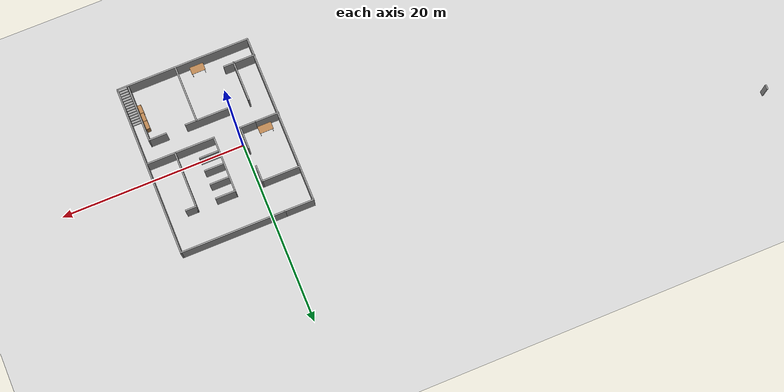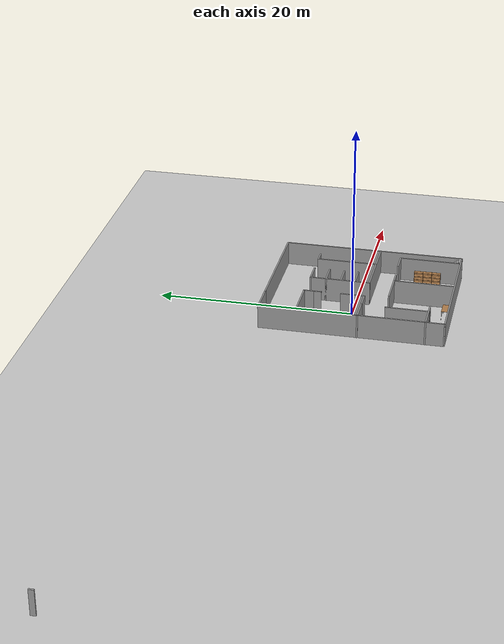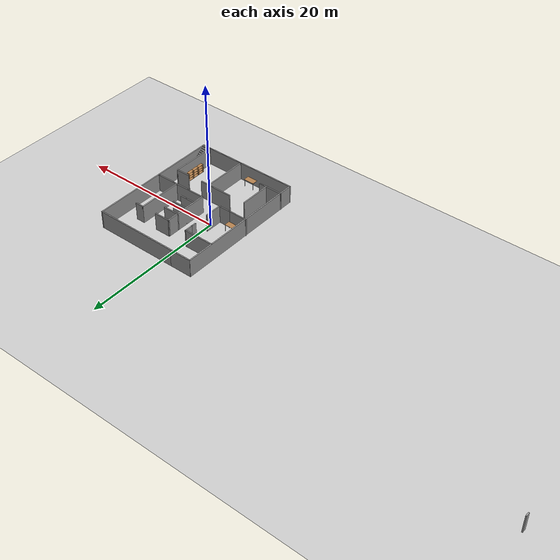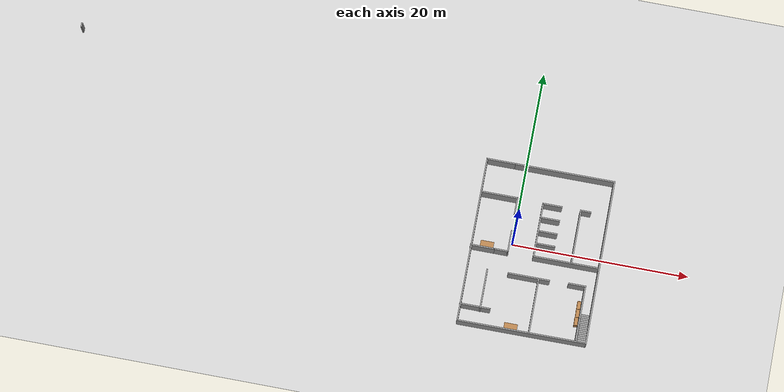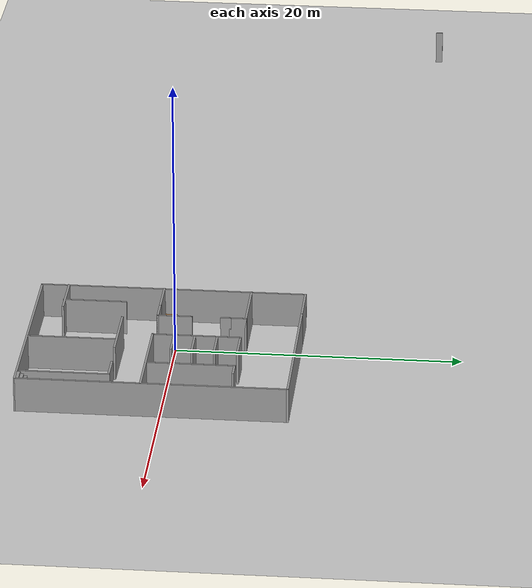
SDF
<sdf version="1.7">
 <world name="default">
  <scene><ambient>0.4 0.4 0.4 1</ambient><background>0.7 0.7 0.7 1</background><shadows>1</shadows></scene>
  <light name="sun" type="directional">
   <pose>0 0 10 0 -0 0</pose>
   <diffuse>0.8 0.8 0.8 1</diffuse>
   <specular>0.2 0.2 0.2 1</specular>
   <attenuation>
    <range>1000</range>
    <constant>0.9</constant>
    <linear>0.01</linear>
    <quadratic>0.001</quadratic>
   </attenuation>
   <direction>-0.5 0.1 -0.9</direction>
   <spot><inner_angle>0</inner_angle><outer_angle>0</outer_angle><falloff>0</falloff></spot>
  </light>
  <model name="ground_plane">
   <static>1</static>
   <link name="link">
    <collision name="collision">
     <geometry><plane><normal>0 0 1</normal><size>100 100</size></plane></geometry>
     <surface><friction><ode><mu>100</mu><mu2>50</mu2></ode></friction></surface>
    </collision>
    <visual name="visual">
     <cast_shadows>0</cast_shadows>
     <geometry><plane><normal>0 0 1</normal><size>100 100</size></plane></geometry>
     <material>
      <script><uri>file://media/materials/scripts/gazebo.material</uri><name>Gazebo/Grey</name></script>
     </material>
    </visual>
   </link>
  </model>
  <physics type="ode">
   <real_time_update_rate>0</real_time_update_rate>
   <max_step_size>0.001</max_step_size>
   <real_time_factor>1</real_time_factor>
   <ode>
    <solver>
     <type>quick</type>
     <iters>150</iters>
     <precon_iters>0</precon_iters>
     <sor>1.4</sor>
     <use_dynamic_moi_rescaling>1</use_dynamic_moi_rescaling>
    </solver>
    <constraints>
     <cfm>1e-05</cfm>
     <erp>0.2</erp>
     <contact_max_correcting_vel>2000</contact_max_correcting_vel>
     <contact_surface_layer>0.01</contact_surface_layer>
    </constraints>
   </ode>
  </physics>
  <gravity>0 0 -9.8</gravity>
  <magnetic_field>6e-06 2.3e-05 -4.2e-05</magnetic_field>
  <atmosphere type="adiabatic"/>
  <spherical_coordinates>
   <surface_model>EARTH_WGS84</surface_model>
   <latitude_deg>0</latitude_deg>
   <longitude_deg>0</longitude_deg>
   <elevation>0</elevation>
   <heading_deg>0</heading_deg>
  </spherical_coordinates>
  <model name="Base_square">
   <pose>-21.2675 2.85477 0 0 -0 0</pose>
   <link name="Wall_17">
    <collision name="Wall_17_Collision">
     <geometry><box><size>18.75 0.15 2.5</size></box></geometry>
     <pose>0 0 1.25 0 -0 0</pose>
    </collision>
    <visual name="Wall_17_Visual">
     <pose>0 0 1.25 0 -0 0</pose>
     <geometry><box><size>18.75 0.15 2.5</size></box></geometry>
     <material>
      <script><uri>file://media/materials/scripts/gazebo.material</uri><name>Gazebo/Grey</name></script>
      <ambient>1 1 1 1</ambient>
     </material>
     <meta><layer>0</layer></meta>
    </visual>
    <pose>16.7268 -3.44544 0 0 -0 -1.5708</pose>
   </link>
   <link name="Wall_18">
    <collision name="Wall_18_Collision">
     <geometry><box><size>14.6395 0.15 2.5</size></box></geometry>
     <pose>0 0 1.25 0 -0 0</pose>
    </collision>
    <visual name="Wall_18_Visual">
     <pose>0 0 1.25 0 -0 0</pose>
     <geometry><box><size>14.6395 0.15 2.5</size></box></geometry>
     <material>
      <script><uri>file://media/materials/scripts/gazebo.material</uri><name>Gazebo/Grey</name></script>
      <ambient>1 1 1 1</ambient>
     </material>
     <meta><layer>0</layer></meta>
    </visual>
    <pose>23.9714 -12.7722 0 0 -0 0.003693</pose>
   </link>
   <link name="Wall_19">
    <collision name="Wall_19_Collision">
     <geometry><box><size>18.75 0.15 2.5</size></box></geometry>
     <pose>0 0 1.25 0 -0 0</pose>
    </collision>
    <visual name="Wall_19_Visual">
     <pose>0 0 1.25 0 -0 0</pose>
     <geometry><box><size>18.75 0.15 2.5</size></box></geometry>
     <material>
      <script><uri>file://media/materials/scripts/gazebo.material</uri><name>Gazebo/Grey</name></script>
      <ambient>1 1 1 1</ambient>
     </material>
     <meta><layer>0</layer></meta>
    </visual>
    <pose>31.216 -3.44544 0 0 -0 1.5708</pose>
   </link>
   <link name="Wall_20">
    <collision name="Wall_20_Collision">
     <geometry><box><size>11.5 0.15 2.5</size></box></geometry>
     <pose>0 0 1.25 0 -0 0</pose>
    </collision>
    <visual name="Wall_20_Visual">
     <pose>0 0 1.25 0 -0 0</pose>
     <geometry><box><size>11.5 0.15 2.5</size></box></geometry>
     <material>
      <script><uri>file://media/materials/scripts/gazebo.material</uri><name>Gazebo/Grey</name></script>
      <ambient>1 1 1 1</ambient>
     </material>
     <meta><layer>0</layer></meta>
    </visual>
    <pose>25.541 5.85456 0 0 -0 3.14159</pose>
   </link>
   <link name="Wall_32">
    <collision name="Wall_32_Collision">
     <geometry><box><size>3.25 0.15 2.5</size></box></geometry>
     <pose>0 0 1.25 0 -0 0</pose>
    </collision>
    <visual name="Wall_32_Visual">
     <pose>0 0 1.25 0 -0 0</pose>
     <geometry><box><size>3.25 0.15 2.5</size></box></geometry>
     <material>
      <script><uri>file://media/materials/scripts/gazebo.material</uri><name>Gazebo/Grey</name></script>
      <ambient>1 1 1 1</ambient>
     </material>
     <meta><layer>0</layer></meta>
    </visual>
    <pose>18.316 5.85456 0 0 -0 3.14159</pose>
   </link>
   <link name="Wall_8">
    <collision name="Wall_8_Collision">
     <geometry><box><size>0.5 0.15 2.5</size></box></geometry>
     <pose>0 0 1.25 0 -0 0</pose>
    </collision>
    <visual name="Wall_8_Visual">
     <pose>0 0 1.25 0 -0 0</pose>
     <geometry><box><size>0.5 0.15 2.5</size></box></geometry>
     <material>
      <script><uri>file://media/materials/scripts/gazebo.material</uri><name>Gazebo/Grey</name></script>
      <ambient>1 1 1 1</ambient>
     </material>
     <meta><layer>0</layer></meta>
    </visual>
    <pose>-31.2164 12.6242 0 0 -0 -1.5708</pose>
   </link>
   <static>1</static>
  </model>
  <model name="office">
   <pose>2.64469 -2.45083 0 0 -0 0</pose>
   <link name="Stairs_0">
    <visual name="Stairs_0_Visual_0">
     <pose>6.78651 -4.00878 0.083333 0 -0 0</pose>
     <geometry><box><size>1 0.233333 0.166667</size></box></geometry>
     <material>
      <script><uri>file://media/materials/scripts/gazebo.material</uri><name>Gazebo/Grey</name></script>
      <ambient>1 1 1 1</ambient>
     </material>
     <meta><layer>0</layer></meta>
    </visual>
    <collision name="Stairs_0_Collision_0">
     <geometry><box><size>1 0.233333 0.166667</size></box></geometry>
     <pose>6.78651 -4.00878 0.083333 0 -0 0</pose>
    </collision>
    <visual name="Stairs_0_Visual_1">
     <pose>6.78651 -4.24212 0.25 0 -0 0</pose>
     <geometry><box><size>1 0.233333 0.166667</size></box></geometry>
     <material>
      <script><uri>file://media/materials/scripts/gazebo.material</uri><name>Gazebo/Grey</name></script>
      <ambient>1 1 1 1</ambient>
     </material>
     <meta><layer>0</layer></meta>
    </visual>
    <collision name="Stairs_0_Collision_1">
     <geometry><box><size>1 0.233333 0.166667</size></box></geometry>
     <pose>6.78651 -4.24212 0.25 0 -0 0</pose>
    </collision>
    <visual name="Stairs_0_Visual_2">
     <pose>6.78651 -4.47545 0.416667 0 -0 0</pose>
     <geometry><box><size>1 0.233333 0.166667</size></box></geometry>
     <material>
      <script><uri>file://media/materials/scripts/gazebo.material</uri><name>Gazebo/Grey</name></script>
      <ambient>1 1 1 1</ambient>
     </material>
     <meta><layer>0</layer></meta>
    </visual>
    <collision name="Stairs_0_Collision_2">
     <geometry><box><size>1 0.233333 0.166667</size></box></geometry>
     <pose>6.78651 -4.47545 0.416667 0 -0 0</pose>
    </collision>
    <visual name="Stairs_0_Visual_3">
     <pose>6.78651 -4.70878 0.583333 0 -0 0</pose>
     <geometry><box><size>1 0.233333 0.166667</size></box></geometry>
     <material>
      <script><uri>file://media/materials/scripts/gazebo.material</uri><name>Gazebo/Grey</name></script>
      <ambient>1 1 1 1</ambient>
     </material>
     <meta><layer>0</layer></meta>
    </visual>
    <collision name="Stairs_0_Collision_3">
     <geometry><box><size>1 0.233333 0.166667</size></box></geometry>
     <pose>6.78651 -4.70878 0.583333 0 -0 0</pose>
    </collision>
    <visual name="Stairs_0_Visual_4">
     <pose>6.78651 -4.94212 0.75 0 -0 0</pose>
     <geometry><box><size>1 0.233333 0.166667</size></box></geometry>
     <material>
      <script><uri>file://media/materials/scripts/gazebo.material</uri><name>Gazebo/Grey</name></script>
      <ambient>1 1 1 1</ambient>
     </material>
     <meta><layer>0</layer></meta>
    </visual>
    <collision name="Stairs_0_Collision_4">
     <geometry><box><size>1 0.233333 0.166667</size></box></geometry>
     <pose>6.78651 -4.94212 0.75 0 -0 0</pose>
    </collision>
    <visual name="Stairs_0_Visual_5">
     <pose>6.78651 -5.17545 0.916667 0 -0 0</pose>
     <geometry><box><size>1 0.233333 0.166667</size></box></geometry>
     <material>
      <script><uri>file://media/materials/scripts/gazebo.material</uri><name>Gazebo/Grey</name></script>
      <ambient>1 1 1 1</ambient>
     </material>
     <meta><layer>0</layer></meta>
    </visual>
    <collision name="Stairs_0_Collision_5">
     <geometry><box><size>1 0.233333 0.166667</size></box></geometry>
     <pose>6.78651 -5.17545 0.916667 0 -0 0</pose>
    </collision>
    <visual name="Stairs_0_Visual_6">
     <pose>6.78651 -5.40878 1.08333 0 -0 0</pose>
     <geometry><box><size>1 0.233333 0.166667</size></box></geometry>
     <material>
      <script><uri>file://media/materials/scripts/gazebo.material</uri><name>Gazebo/Grey</name></script>
      <ambient>1 1 1 1</ambient>
     </material>
     <meta><layer>0</layer></meta>
    </visual>
    <collision name="Stairs_0_Collision_6">
     <geometry><box><size>1 0.233333 0.166667</size></box></geometry>
     <pose>6.78651 -5.40878 1.08333 0 -0 0</pose>
    </collision>
    <visual name="Stairs_0_Visual_7">
     <pose>6.78651 -5.64212 1.25 0 -0 0</pose>
     <geometry><box><size>1 0.233333 0.166667</size></box></geometry>
     <material>
      <script><uri>file://media/materials/scripts/gazebo.material</uri><name>Gazebo/Grey</name></script>
      <ambient>1 1 1 1</ambient>
     </material>
     <meta><layer>0</layer></meta>
    </visual>
    <collision name="Stairs_0_Collision_7">
     <geometry><box><size>1 0.233333 0.166667</size></box></geometry>
     <pose>6.78651 -5.64212 1.25 0 -0 0</pose>
    </collision>
    <visual name="Stairs_0_Visual_8">
     <pose>6.78651 -5.87545 1.41667 0 -0 0</pose>
     <geometry><box><size>1 0.233333 0.166667</size></box></geometry>
     <material>
      <script><uri>file://media/materials/scripts/gazebo.material</uri><name>Gazebo/Grey</name></script>
      <ambient>1 1 1 1</ambient>
     </material>
     <meta><layer>0</layer></meta>
    </visual>
    <collision name="Stairs_0_Collision_8">
     <geometry><box><size>1 0.233333 0.166667</size></box></geometry>
     <pose>6.78651 -5.87545 1.41667 0 -0 0</pose>
    </collision>
    <visual name="Stairs_0_Visual_9">
     <pose>6.78651 -6.10879 1.58333 0 -0 0</pose>
     <geometry><box><size>1 0.233333 0.166667</size></box></geometry>
     <material>
      <script><uri>file://media/materials/scripts/gazebo.material</uri><name>Gazebo/Grey</name></script>
      <ambient>1 1 1 1</ambient>
     </material>
     <meta><layer>0</layer></meta>
    </visual>
    <collision name="Stairs_0_Collision_9">
     <geometry><box><size>1 0.233333 0.166667</size></box></geometry>
     <pose>6.78651 -6.10879 1.58333 0 -0 0</pose>
    </collision>
    <visual name="Stairs_0_Visual_10">
     <pose>6.78651 -6.34212 1.75 0 -0 0</pose>
     <geometry><box><size>1 0.233333 0.166667</size></box></geometry>
     <material>
      <script><uri>file://media/materials/scripts/gazebo.material</uri><name>Gazebo/Grey</name></script>
      <ambient>1 1 1 1</ambient>
     </material>
     <meta><layer>0</layer></meta>
    </visual>
    <collision name="Stairs_0_Collision_10">
     <geometry><box><size>1 0.233333 0.166667</size></box></geometry>
     <pose>6.78651 -6.34212 1.75 0 -0 0</pose>
    </collision>
    <visual name="Stairs_0_Visual_11">
     <pose>6.78651 -6.57545 1.91667 0 -0 0</pose>
     <geometry><box><size>1 0.233333 0.166667</size></box></geometry>
     <material>
      <script><uri>file://media/materials/scripts/gazebo.material</uri><name>Gazebo/Grey</name></script>
      <ambient>1 1 1 1</ambient>
     </material>
     <meta><layer>0</layer></meta>
    </visual>
    <collision name="Stairs_0_Collision_11">
     <geometry><box><size>1 0.233333 0.166667</size></box></geometry>
     <pose>6.78651 -6.57545 1.91667 0 -0 0</pose>
    </collision>
    <visual name="Stairs_0_Visual_12">
     <pose>6.78651 -6.80878 2.08333 0 -0 0</pose>
     <geometry><box><size>1 0.233333 0.166667</size></box></geometry>
     <material>
      <script><uri>file://media/materials/scripts/gazebo.material</uri><name>Gazebo/Grey</name></script>
      <ambient>1 1 1 1</ambient>
     </material>
     <meta><layer>0</layer></meta>
    </visual>
    <collision name="Stairs_0_Collision_12">
     <geometry><box><size>1 0.233333 0.166667</size></box></geometry>
     <pose>6.78651 -6.80878 2.08333 0 -0 0</pose>
    </collision>
    <visual name="Stairs_0_Visual_13">
     <pose>6.78651 -7.04212 2.25 0 -0 0</pose>
     <geometry><box><size>1 0.233333 0.166667</size></box></geometry>
     <material>
      <script><uri>file://media/materials/scripts/gazebo.material</uri><name>Gazebo/Grey</name></script>
      <ambient>1 1 1 1</ambient>
     </material>
     <meta><layer>0</layer></meta>
    </visual>
    <collision name="Stairs_0_Collision_13">
     <geometry><box><size>1 0.233333 0.166667</size></box></geometry>
     <pose>6.78651 -7.04212 2.25 0 -0 0</pose>
    </collision>
    <visual name="Stairs_0_Visual_14">
     <pose>6.78651 -7.27545 2.41667 0 -0 0</pose>
     <geometry><box><size>1 0.233333 0.166667</size></box></geometry>
     <material>
      <script><uri>file://media/materials/scripts/gazebo.material</uri><name>Gazebo/Grey</name></script>
      <ambient>1 1 1 1</ambient>
     </material>
     <meta><layer>0</layer></meta>
    </visual>
    <collision name="Stairs_0_Collision_14">
     <geometry><box><size>1 0.233333 0.166667</size></box></geometry>
     <pose>6.78651 -7.27545 2.41667 0 -0 0</pose>
    </collision>
   </link>
   <link name="Wall_1">
    <collision name="Wall_1_Collision">
     <geometry><box><size>1.75 0.15 2.5</size></box></geometry>
     <pose>0 0 1.25 0 -0 0</pose>
    </collision>
    <visual name="Wall_1_Visual">
     <pose>0 0 1.25 0 -0 0</pose>
     <geometry><box><size>1.75 0.15 2.5</size></box></geometry>
     <material>
      <script><uri>file://media/materials/scripts/gazebo.material</uri><name>Gazebo/Grey</name></script>
      <ambient>1 1 1 1</ambient>
     </material>
     <meta><layer>0</layer></meta>
    </visual>
    <pose>-3.83469 1.18083 0 0 -0 3.14159</pose>
   </link>
   <link name="Wall_11">
    <collision name="Wall_11_Collision">
     <geometry><box><size>6.25 0.15 2.5</size></box></geometry>
     <pose>0 0 1.25 0 -0 0</pose>
    </collision>
    <visual name="Wall_11_Visual">
     <pose>0 0 1.25 0 -0 0</pose>
     <geometry><box><size>6.25 0.15 2.5</size></box></geometry>
     <material>
      <script><uri>file://media/materials/scripts/gazebo.material</uri><name>Gazebo/Grey</name></script>
      <ambient>1 1 1 1</ambient>
     </material>
     <meta><layer>0</layer></meta>
    </visual>
    <pose>-0.115312 4.20199 0 0 -0 -1.5708</pose>
   </link>
   <link name="Wall_12">
    <collision name="Wall_12_Collision">
     <geometry><box><size>7.5 0.15 2.5</size></box></geometry>
     <pose>0 0 1.25 0 -0 0</pose>
    </collision>
    <visual name="Wall_12_Visual">
     <pose>0 0 1.25 0 -0 0</pose>
     <geometry><box><size>7.5 0.15 2.5</size></box></geometry>
     <material>
      <script><uri>file://media/materials/scripts/gazebo.material</uri><name>Gazebo/Grey</name></script>
      <ambient>1 1 1 1</ambient>
     </material>
     <meta><layer>0</layer></meta>
    </visual>
    <pose>3.55969 1.15199 0 0 -0 0</pose>
   </link>
   <link name="Wall_14">
    <collision name="Wall_14_Collision">
     <geometry><box><size>6.25 0.15 2.5</size></box></geometry>
     <pose>0 0 1.25 0 -0 0</pose>
    </collision>
    <visual name="Wall_14_Visual">
     <pose>0 0 1.25 0 -0 0</pose>
     <geometry><box><size>6.25 0.15 2.5</size></box></geometry>
     <material>
      <script><uri>file://media/materials/scripts/gazebo.material</uri><name>Gazebo/Grey</name></script>
      <ambient>1 1 1 1</ambient>
     </material>
     <meta><layer>0</layer></meta>
    </visual>
    <pose>4.16489 4.2027 0 0 -0 1.5708</pose>
   </link>
   <link name="Wall_16">
    <collision name="Wall_16_Collision">
     <geometry><box><size>2.25 0.15 2.5</size></box></geometry>
     <pose>0 0 1.25 0 -0 0</pose>
    </collision>
    <visual name="Wall_16_Visual">
     <pose>0 0 1.25 0 -0 0</pose>
     <geometry><box><size>2.25 0.15 2.5</size></box></geometry>
     <material>
      <script><uri>file://media/materials/scripts/gazebo.material</uri><name>Gazebo/Grey</name></script>
      <ambient>1 1 1 1</ambient>
     </material>
     <meta><layer>0</layer></meta>
    </visual>
    <pose>0.934688 7.25199 0 0 -0 0</pose>
   </link>
   <link name="Wall_18">
    <collision name="Wall_18_Collision">
     <geometry><box><size>2.25 0.15 2.5</size></box></geometry>
     <pose>0 0 1.25 0 -0 0</pose>
    </collision>
    <visual name="Wall_18_Visual">
     <pose>0 0 1.25 0 -0 0</pose>
     <geometry><box><size>2.25 0.15 2.5</size></box></geometry>
     <material>
      <script><uri>file://media/materials/scripts/gazebo.material</uri><name>Gazebo/Grey</name></script>
      <ambient>1 1 1 1</ambient>
     </material>
     <meta><layer>0</layer></meta>
    </visual>
    <pose>0.934688 5.64691 0 0 -0 0</pose>
   </link>
   <link name="Wall_2">
    <collision name="Wall_2_Collision">
     <geometry><box><size>2.75 0.15 2.5</size></box></geometry>
     <pose>0 0 1.25 0 -0 0</pose>
    </collision>
    <visual name="Wall_2_Visual">
     <pose>0 0 1.25 0 -0 0</pose>
     <geometry><box><size>2.75 0.15 2.5</size></box></geometry>
     <material>
      <script><uri>file://media/materials/scripts/gazebo.material</uri><name>Gazebo/Grey</name></script>
      <ambient>1 1 1 1</ambient>
     </material>
     <meta><layer>0</layer></meta>
    </visual>
    <pose>-5.93469 1.18083 0 0 -0 3.14159</pose>
   </link>
   <link name="Wall_20">
    <collision name="Wall_20_Collision">
     <geometry><box><size>2.25 0.15 2.5</size></box></geometry>
     <pose>0 0 1.25 0 -0 0</pose>
    </collision>
    <visual name="Wall_20_Visual">
     <pose>0 0 1.25 0 -0 0</pose>
     <geometry><box><size>2.25 0.15 2.5</size></box></geometry>
     <material>
      <script><uri>file://media/materials/scripts/gazebo.material</uri><name>Gazebo/Grey</name></script>
      <ambient>1 1 1 1</ambient>
     </material>
     <meta><layer>0</layer></meta>
    </visual>
    <pose>0.934688 4.09534 0 0 -0 0</pose>
   </link>
   <link name="Wall_22">
    <collision name="Wall_22_Collision">
     <geometry><box><size>2.25 0.15 2.5</size></box></geometry>
     <pose>0 0 1.25 0 -0 0</pose>
    </collision>
    <visual name="Wall_22_Visual">
     <pose>0 0 1.25 0 -0 0</pose>
     <geometry><box><size>2.25 0.15 2.5</size></box></geometry>
     <material>
      <script><uri>file://media/materials/scripts/gazebo.material</uri><name>Gazebo/Grey</name></script>
      <ambient>1 1 1 1</ambient>
     </material>
     <meta><layer>0</layer></meta>
    </visual>
    <pose>0.934688 2.65077 0 0 -0 0</pose>
   </link>
   <link name="Wall_24">
    <collision name="Wall_24_Collision">
     <geometry><box><size>1.25 0.15 2.5</size></box></geometry>
     <pose>0 0 1.25 0 -0 0</pose>
    </collision>
    <visual name="Wall_24_Visual">
     <pose>0 0 1.25 0 -0 0</pose>
     <geometry><box><size>1.25 0.15 2.5</size></box></geometry>
     <material>
      <script><uri>file://media/materials/scripts/gazebo.material</uri><name>Gazebo/Grey</name></script>
      <ambient>1 1 1 1</ambient>
     </material>
     <meta><layer>0</layer></meta>
    </visual>
    <pose>4.71489 7.2527 0 0 -0 0</pose>
   </link>
   <link name="Wall_26">
    <collision name="Wall_26_Collision">
     <geometry><box><size>2 0.15 2.5</size></box></geometry>
     <pose>0 0 1.25 0 -0 0</pose>
    </collision>
    <visual name="Wall_26_Visual">
     <pose>0 0 1.25 0 -0 0</pose>
     <geometry><box><size>2 0.15 2.5</size></box></geometry>
     <material>
      <script><uri>file://media/materials/scripts/gazebo.material</uri><name>Gazebo/Grey</name></script>
      <ambient>1 1 1 1</ambient>
     </material>
     <meta><layer>0</layer></meta>
    </visual>
    <pose>5.2202 -1.14791 0 0 -0 0</pose>
   </link>
   <link name="Wall_27">
    <collision name="Wall_27_Collision">
     <geometry><box><size>6.25 0.15 2.5</size></box></geometry>
     <pose>0 0 1.25 0 -0 0</pose>
    </collision>
    <visual name="Wall_27_Visual">
     <pose>0 0 1.25 0 -0 0</pose>
     <geometry><box><size>6.25 0.15 2.5</size></box></geometry>
     <material>
      <script><uri>file://media/materials/scripts/gazebo.material</uri><name>Gazebo/Grey</name></script>
      <ambient>1 1 1 1</ambient>
     </material>
     <meta><layer>0</layer></meta>
    </visual>
    <pose>6.1452 -4.19791 0 0 -0 -1.5708</pose>
   </link>
   <link name="Wall_31">
    <collision name="Wall_31_Collision">
     <geometry><box><size>3.5 0.15 2.5</size></box></geometry>
     <pose>0 0 1.25 0 -0 0</pose>
    </collision>
    <visual name="Wall_31_Visual">
     <pose>0 0 1.25 0 -0 0</pose>
     <geometry><box><size>3.5 0.15 2.5</size></box></geometry>
     <material>
      <script><uri>file://media/materials/scripts/gazebo.material</uri><name>Gazebo/Grey</name></script>
      <ambient>1 1 1 1</ambient>
     </material>
     <meta><layer>0</layer></meta>
    </visual>
    <pose>-5.53549 -5.58861 0 0 -0 3.14159</pose>
   </link>
   <link name="Wall_34">
    <collision name="Wall_34_Collision">
     <geometry><box><size>4.5 0.15 2.5</size></box></geometry>
     <pose>0 0 1.25 0 -0 0</pose>
    </collision>
    <visual name="Wall_34_Visual">
     <pose>0 0 1.25 0 -0 0</pose>
     <geometry><box><size>4.5 0.15 2.5</size></box></geometry>
     <material>
      <script><uri>file://media/materials/scripts/gazebo.material</uri><name>Gazebo/Grey</name></script>
      <ambient>1 1 1 1</ambient>
     </material>
     <meta><layer>0</layer></meta>
    </visual>
    <pose>-4.93054 -3.46712 0 0 -0 1.5708</pose>
   </link>
   <link name="Wall_36">
    <collision name="Wall_36_Collision">
     <geometry><box><size>4.75 0.15 2.5</size></box></geometry>
     <pose>0 0 1.25 0 -0 0</pose>
    </collision>
    <visual name="Wall_36_Visual">
     <pose>0 0 1.25 0 -0 0</pose>
     <geometry><box><size>4.75 0.15 2.5</size></box></geometry>
     <material>
      <script><uri>file://media/materials/scripts/gazebo.material</uri><name>Gazebo/Grey</name></script>
      <ambient>1 1 1 1</ambient>
     </material>
     <meta><layer>0</layer></meta>
    </visual>
    <pose>-0.225363 -1.23966 0 0 -0 3.14159</pose>
   </link>
   <link name="Wall_38">
    <collision name="Wall_38_Collision">
     <geometry><box><size>6.25 0.15 2.5</size></box></geometry>
     <pose>0 0 1.25 0 -0 0</pose>
    </collision>
    <visual name="Wall_38_Visual">
     <pose>0 0 1.25 0 -0 0</pose>
     <geometry><box><size>6.25 0.15 2.5</size></box></geometry>
     <material>
      <script><uri>file://media/materials/scripts/gazebo.material</uri><name>Gazebo/Grey</name></script>
      <ambient>1 1 1 1</ambient>
     </material>
     <meta><layer>0</layer></meta>
    </visual>
    <pose>0.884574 -4.29834 0 0 -0 -1.5708</pose>
   </link>
   <link name="Wall_4">
    <collision name="Wall_4_Collision">
     <geometry><box><size>2.5 0.15 2.5</size></box></geometry>
     <pose>0 0 1.25 0 -0 0</pose>
    </collision>
    <visual name="Wall_4_Visual">
     <pose>0 0 1.25 0 -0 0</pose>
     <geometry><box><size>2.5 0.15 2.5</size></box></geometry>
     <material>
      <script><uri>file://media/materials/scripts/gazebo.material</uri><name>Gazebo/Grey</name></script>
      <ambient>1 1 1 1</ambient>
     </material>
     <meta><layer>0</layer></meta>
    </visual>
    <pose>-3.03469 2.35583 0 0 -0 1.5708</pose>
   </link>
   <link name="Wall_7">
    <collision name="Wall_7_Collision">
     <geometry><box><size>0.75 0.15 2.5</size></box></geometry>
     <pose>0 0 1.25 0 -0 0</pose>
    </collision>
    <visual name="Wall_7_Visual">
     <pose>0 0 1.25 0 -0 0</pose>
     <geometry><box><size>0.75 0.15 2.5</size></box></geometry>
     <material>
      <script><uri>file://media/materials/scripts/gazebo.material</uri><name>Gazebo/Grey</name></script>
      <ambient>1 1 1 1</ambient>
     </material>
     <meta><layer>0</layer></meta>
    </visual>
    <pose>-3.04933 5.94834 0 0 -0 1.5708</pose>
   </link>
   <link name="Wall_8">
    <collision name="Wall_8_Collision">
     <geometry><box><size>1.25 0.15 2.5</size></box></geometry>
     <pose>0 0 1.25 0 -0 0</pose>
    </collision>
    <visual name="Wall_8_Visual">
     <pose>0 0 1.25 0 -0 0</pose>
     <geometry><box><size>1.25 0.15 2.5</size></box></geometry>
     <material>
      <script><uri>file://media/materials/scripts/gazebo.material</uri><name>Gazebo/Grey</name></script>
      <ambient>1 1 1 1</ambient>
     </material>
     <meta><layer>0</layer></meta>
    </visual>
    <pose>-3.04933 6.79834 0 0 -0 1.5708</pose>
   </link>
   <link name="Wall_9">
    <collision name="Wall_9_Collision">
     <geometry><box><size>4.25 0.15 2.5</size></box></geometry>
     <pose>0 0 1.25 0 -0 0</pose>
    </collision>
    <visual name="Wall_9_Visual">
     <pose>0 0 1.25 0 -0 0</pose>
     <geometry><box><size>4.25 0.15 2.5</size></box></geometry>
     <material>
      <script><uri>file://media/materials/scripts/gazebo.material</uri><name>Gazebo/Grey</name></script>
      <ambient>1 1 1 1</ambient>
     </material>
     <meta><layer>0</layer></meta>
    </visual>
    <pose>-5.09933 7.34834 0 0 -0 3.14159</pose>
   </link>
   <static>1</static>
  </model>
  <model name="bookshelf">
   <static>1</static>
   <link name="link">
    <inertial><mass>1</mass></inertial>
    <collision name="back">
     <pose>0 0.005 0.6 0 -0 0</pose>
     <geometry><box><size>0.9 0.01 1.2</size></box></geometry>
    </collision>
    <visual name="visual1">
     <pose>0 0.005 0.6 0 -0 0</pose>
     <geometry><box><size>0.9 0.01 1.2</size></box></geometry>
     <material>
      <script><uri>file://media/materials/scripts/gazebo.material</uri><name>Gazebo/Wood</name></script>
     </material>
    </visual>
    <collision name="left_side">
     <pose>0.45 -0.195 0.6 0 -0 0</pose>
     <geometry><box><size>0.02 0.4 1.2</size></box></geometry>
    </collision>
    <visual name="visual2">
     <pose>0.45 -0.195 0.6 0 -0 0</pose>
     <geometry><box><size>0.02 0.4 1.2</size></box></geometry>
     <material>
      <script><uri>file://media/materials/scripts/gazebo.material</uri><name>Gazebo/Wood</name></script>
     </material>
    </visual>
    <collision name="right_side">
     <pose>-0.45 -0.195 0.6 0 -0 0</pose>
     <geometry><box><size>0.02 0.4 1.2</size></box></geometry>
    </collision>
    <visual name="visual3">
     <pose>-0.45 -0.195 0.6 0 -0 0</pose>
     <geometry><box><size>0.02 0.4 1.2</size></box></geometry>
     <material>
      <script><uri>file://media/materials/scripts/gazebo.material</uri><name>Gazebo/Wood</name></script>
     </material>
    </visual>
    <collision name="bottom">
     <pose>0 -0.195 0.03 0 -0 0</pose>
     <geometry><box><size>0.88 0.4 0.06</size></box></geometry>
    </collision>
    <visual name="visual4">
     <pose>0 -0.195 0.03 0 -0 0</pose>
     <geometry><box><size>0.88 0.4 0.06</size></box></geometry>
     <material>
      <script><uri>file://media/materials/scripts/gazebo.material</uri><name>Gazebo/Wood</name></script>
     </material>
    </visual>
    <collision name="top">
     <pose>0 -0.195 1.19 0 -0 0</pose>
     <geometry><box><size>0.88 0.4 0.02</size></box></geometry>
    </collision>
    <visual name="visual5">
     <pose>0 -0.195 1.19 0 -0 0</pose>
     <geometry><box><size>0.88 0.4 0.02</size></box></geometry>
     <material>
      <script><uri>file://media/materials/scripts/gazebo.material</uri><name>Gazebo/Wood</name></script>
     </material>
    </visual>
    <collision name="low_shelf">
     <pose>0 -0.195 0.43 0 -0 0</pose>
     <geometry><box><size>0.88 0.4 0.02</size></box></geometry>
    </collision>
    <visual name="visual6">
     <pose>0 -0.195 0.43 0 -0 0</pose>
     <geometry><box><size>0.88 0.4 0.02</size></box></geometry>
     <material>
      <script><uri>file://media/materials/scripts/gazebo.material</uri><name>Gazebo/Wood</name></script>
     </material>
    </visual>
    <collision name="high_shelf">
     <pose>0 -0.195 0.8 0 -0 0</pose>
     <geometry><box><size>0.88 0.4 0.02</size></box></geometry>
    </collision>
    <visual name="visual7">
     <pose>0 -0.195 0.8 0 -0 0</pose>
     <geometry><box><size>0.88 0.4 0.02</size></box></geometry>
     <material>
      <script><uri>file://media/materials/scripts/gazebo.material</uri><name>Gazebo/Wood</name></script>
     </material>
    </visual>
   </link>
   <pose>8.68126 -5.59202 0 0 0 -1.54724</pose>
  </model>
  <model name="table">
   <static>1</static>
   <link name="link">
    <collision name="surface">
     <pose>0 0 1 0 -0 0</pose>
     <geometry><box><size>1.5 0.8 0.03</size></box></geometry>
     <surface><friction><ode><mu>0.6</mu><mu2>0.6</mu2></ode></friction></surface>
    </collision>
    <visual name="visual1">
     <pose>0 0 1 0 -0 0</pose>
     <geometry><box><size>1.5 0.8 0.03</size></box></geometry>
     <material>
      <script><uri>file://media/materials/scripts/gazebo.material</uri><name>Gazebo/Wood</name></script>
     </material>
    </visual>
    <collision name="front_left_leg">
     <pose>0.68 0.38 0.5 0 -0 0</pose>
     <geometry><cylinder><radius>0.02</radius><length>1</length></cylinder></geometry>
    </collision>
    <visual name="front_left_leg2">
     <pose>0.68 0.38 0.5 0 -0 0</pose>
     <geometry><cylinder><radius>0.02</radius><length>1</length></cylinder></geometry>
     <material>
      <script><uri>file://media/materials/scripts/gazebo.material</uri><name>Gazebo/Grey</name></script>
     </material>
    </visual>
    <collision name="front_right_leg">
     <pose>0.68 -0.38 0.5 0 -0 0</pose>
     <geometry><cylinder><radius>0.02</radius><length>1</length></cylinder></geometry>
    </collision>
    <visual name="front_right_leg2">
     <pose>0.68 -0.38 0.5 0 -0 0</pose>
     <geometry><cylinder><radius>0.02</radius><length>1</length></cylinder></geometry>
     <material>
      <script><uri>file://media/materials/scripts/gazebo.material</uri><name>Gazebo/Grey</name></script>
     </material>
    </visual>
    <collision name="back_right_leg">
     <pose>-0.68 -0.38 0.5 0 -0 0</pose>
     <geometry><cylinder><radius>0.02</radius><length>1</length></cylinder></geometry>
    </collision>
    <visual name="back_right_leg2">
     <pose>-0.68 -0.38 0.5 0 -0 0</pose>
     <geometry><cylinder><radius>0.02</radius><length>1</length></cylinder></geometry>
     <material>
      <script><uri>file://media/materials/scripts/gazebo.material</uri><name>Gazebo/Grey</name></script>
     </material>
    </visual>
    <collision name="back_left_leg">
     <pose>-0.68 0.38 0.5 0 -0 0</pose>
     <geometry><cylinder><radius>0.02</radius><length>1</length></cylinder></geometry>
    </collision>
    <visual name="back_left_leg2">
     <pose>-0.68 0.38 0.5 0 -0 0</pose>
     <geometry><cylinder><radius>0.02</radius><length>1</length></cylinder></geometry>
     <material>
      <script><uri>file://media/materials/scripts/gazebo.material</uri><name>Gazebo/Grey</name></script>
     </material>
    </visual>
   </link>
   <pose>-2.83005 -0.671653 0 0 -0 0</pose>
  </model>
  <model name="table_0">
   <static>1</static>
   <link name="link">
    <collision name="surface">
     <pose>0 0 1 0 -0 0</pose>
     <geometry><box><size>1.5 0.8 0.03</size></box></geometry>
     <surface><friction><ode><mu>0.6</mu><mu2>0.6</mu2></ode></friction></surface>
    </collision>
    <visual name="visual1">
     <pose>0 0 1 0 -0 0</pose>
     <geometry><box><size>1.5 0.8 0.03</size></box></geometry>
     <material>
      <script><uri>file://media/materials/scripts/gazebo.material</uri><name>Gazebo/Wood</name></script>
     </material>
    </visual>
    <collision name="front_left_leg">
     <pose>0.68 0.38 0.5 0 -0 0</pose>
     <geometry><cylinder><radius>0.02</radius><length>1</length></cylinder></geometry>
    </collision>
    <visual name="front_left_leg">
     <pose>0.68 0.38 0.5 0 -0 0</pose>
     <geometry><cylinder><radius>0.02</radius><length>1</length></cylinder></geometry>
     <material>
      <script><uri>file://media/materials/scripts/gazebo.material</uri><name>Gazebo/Grey</name></script>
     </material>
    </visual>
    <collision name="front_right_leg">
     <pose>0.68 -0.38 0.5 0 -0 0</pose>
     <geometry><cylinder><radius>0.02</radius><length>1</length></cylinder></geometry>
    </collision>
    <visual name="front_right_leg">
     <pose>0.68 -0.38 0.5 0 -0 0</pose>
     <geometry><cylinder><radius>0.02</radius><length>1</length></cylinder></geometry>
     <material>
      <script><uri>file://media/materials/scripts/gazebo.material</uri><name>Gazebo/Grey</name></script>
     </material>
    </visual>
    <collision name="back_right_leg">
     <pose>-0.68 -0.38 0.5 0 -0 0</pose>
     <geometry><cylinder><radius>0.02</radius><length>1</length></cylinder></geometry>
    </collision>
    <visual name="back_right_leg">
     <pose>-0.68 -0.38 0.5 0 -0 0</pose>
     <geometry><cylinder><radius>0.02</radius><length>1</length></cylinder></geometry>
     <material>
      <script><uri>file://media/materials/scripts/gazebo.material</uri><name>Gazebo/Grey</name></script>
     </material>
    </visual>
    <collision name="back_left_leg">
     <pose>-0.68 0.38 0.5 0 -0 0</pose>
     <geometry><cylinder><radius>0.02</radius><length>1</length></cylinder></geometry>
    </collision>
    <visual name="back_left_leg">
     <pose>-0.68 0.38 0.5 0 -0 0</pose>
     <geometry><cylinder><radius>0.02</radius><length>1</length></cylinder></geometry>
     <material>
      <script><uri>file://media/materials/scripts/gazebo.material</uri><name>Gazebo/Grey</name></script>
     </material>
    </visual>
   </link>
   <pose>1.41929 -9.37873 0 0 -0 0</pose>
  </model>
  <model name="bookshelf_clone">
   <static>1</static>
   <link name="link">
    <inertial><mass>1</mass></inertial>
    <collision name="back">
     <pose>0 0.005 0.6 0 -0 0</pose>
     <geometry><box><size>0.9 0.01 1.2</size></box></geometry>
    </collision>
    <visual name="visual1">
     <pose>0 0.005 0.6 0 -0 0</pose>
     <geometry><box><size>0.9 0.01 1.2</size></box></geometry>
     <material>
      <script><uri>file://media/materials/scripts/gazebo.material</uri><name>Gazebo/Wood</name></script>
     </material>
    </visual>
    <collision name="left_side">
     <pose>0.45 -0.195 0.6 0 -0 0</pose>
     <geometry><box><size>0.02 0.4 1.2</size></box></geometry>
    </collision>
    <visual name="visual2">
     <pose>0.45 -0.195 0.6 0 -0 0</pose>
     <geometry><box><size>0.02 0.4 1.2</size></box></geometry>
     <material>
      <script><uri>file://media/materials/scripts/gazebo.material</uri><name>Gazebo/Wood</name></script>
     </material>
    </visual>
    <collision name="right_side">
     <pose>-0.45 -0.195 0.6 0 -0 0</pose>
     <geometry><box><size>0.02 0.4 1.2</size></box></geometry>
    </collision>
    <visual name="visual3">
     <pose>-0.45 -0.195 0.6 0 -0 0</pose>
     <geometry><box><size>0.02 0.4 1.2</size></box></geometry>
     <material>
      <script><uri>file://media/materials/scripts/gazebo.material</uri><name>Gazebo/Wood</name></script>
     </material>
    </visual>
    <collision name="bottom">
     <pose>0 -0.195 0.03 0 -0 0</pose>
     <geometry><box><size>0.88 0.4 0.06</size></box></geometry>
    </collision>
    <visual name="visual4">
     <pose>0 -0.195 0.03 0 -0 0</pose>
     <geometry><box><size>0.88 0.4 0.06</size></box></geometry>
     <material>
      <script><uri>file://media/materials/scripts/gazebo.material</uri><name>Gazebo/Wood</name></script>
     </material>
    </visual>
    <collision name="top">
     <pose>0 -0.195 1.19 0 -0 0</pose>
     <geometry><box><size>0.88 0.4 0.02</size></box></geometry>
    </collision>
    <visual name="visual5">
     <pose>0 -0.195 1.19 0 -0 0</pose>
     <geometry><box><size>0.88 0.4 0.02</size></box></geometry>
     <material>
      <script><uri>file://media/materials/scripts/gazebo.material</uri><name>Gazebo/Wood</name></script>
     </material>
    </visual>
    <collision name="low_shelf">
     <pose>0 -0.195 0.43 0 -0 0</pose>
     <geometry><box><size>0.88 0.4 0.02</size></box></geometry>
    </collision>
    <visual name="visual6">
     <pose>0 -0.195 0.43 0 -0 0</pose>
     <geometry><box><size>0.88 0.4 0.02</size></box></geometry>
     <material>
      <script><uri>file://media/materials/scripts/gazebo.material</uri><name>Gazebo/Wood</name></script>
     </material>
    </visual>
    <collision name="high_shelf">
     <pose>0 -0.195 0.8 0 -0 0</pose>
     <geometry><box><size>0.88 0.4 0.02</size></box></geometry>
    </collision>
    <visual name="visual7">
     <pose>0 -0.195 0.8 0 -0 0</pose>
     <geometry><box><size>0.88 0.4 0.02</size></box></geometry>
     <material>
      <script><uri>file://media/materials/scripts/gazebo.material</uri><name>Gazebo/Wood</name></script>
     </material>
    </visual>
   </link>
   <pose>8.69499 -6.50948 0 0 0 -1.54724</pose>
  </model>
  <model name="bookshelf_clone_0">
   <static>1</static>
   <link name="link">
    <inertial><mass>1</mass></inertial>
    <collision name="back">
     <pose>0 0.005 0.6 0 -0 0</pose>
     <geometry><box><size>0.9 0.01 1.2</size></box></geometry>
    </collision>
    <visual name="visual1">
     <pose>0 0.005 0.6 0 -0 0</pose>
     <geometry><box><size>0.9 0.01 1.2</size></box></geometry>
     <material>
      <script><uri>file://media/materials/scripts/gazebo.material</uri><name>Gazebo/Wood</name></script>
     </material>
    </visual>
    <collision name="left_side">
     <pose>0.45 -0.195 0.6 0 -0 0</pose>
     <geometry><box><size>0.02 0.4 1.2</size></box></geometry>
    </collision>
    <visual name="visual2">
     <pose>0.45 -0.195 0.6 0 -0 0</pose>
     <geometry><box><size>0.02 0.4 1.2</size></box></geometry>
     <material>
      <script><uri>file://media/materials/scripts/gazebo.material</uri><name>Gazebo/Wood</name></script>
     </material>
    </visual>
    <collision name="right_side">
     <pose>-0.45 -0.195 0.6 0 -0 0</pose>
     <geometry><box><size>0.02 0.4 1.2</size></box></geometry>
    </collision>
    <visual name="visual3">
     <pose>-0.45 -0.195 0.6 0 -0 0</pose>
     <geometry><box><size>0.02 0.4 1.2</size></box></geometry>
     <material>
      <script><uri>file://media/materials/scripts/gazebo.material</uri><name>Gazebo/Wood</name></script>
     </material>
    </visual>
    <collision name="bottom">
     <pose>0 -0.195 0.03 0 -0 0</pose>
     <geometry><box><size>0.88 0.4 0.06</size></box></geometry>
    </collision>
    <visual name="visual4">
     <pose>0 -0.195 0.03 0 -0 0</pose>
     <geometry><box><size>0.88 0.4 0.06</size></box></geometry>
     <material>
      <script><uri>file://media/materials/scripts/gazebo.material</uri><name>Gazebo/Wood</name></script>
     </material>
    </visual>
    <collision name="top">
     <pose>0 -0.195 1.19 0 -0 0</pose>
     <geometry><box><size>0.88 0.4 0.02</size></box></geometry>
    </collision>
    <visual name="visual5">
     <pose>0 -0.195 1.19 0 -0 0</pose>
     <geometry><box><size>0.88 0.4 0.02</size></box></geometry>
     <material>
      <script><uri>file://media/materials/scripts/gazebo.material</uri><name>Gazebo/Wood</name></script>
     </material>
    </visual>
    <collision name="low_shelf">
     <pose>0 -0.195 0.43 0 -0 0</pose>
     <geometry><box><size>0.88 0.4 0.02</size></box></geometry>
    </collision>
    <visual name="visual6">
     <pose>0 -0.195 0.43 0 -0 0</pose>
     <geometry><box><size>0.88 0.4 0.02</size></box></geometry>
     <material>
      <script><uri>file://media/materials/scripts/gazebo.material</uri><name>Gazebo/Wood</name></script>
     </material>
    </visual>
    <collision name="high_shelf">
     <pose>0 -0.195 0.8 0 -0 0</pose>
     <geometry><box><size>0.88 0.4 0.02</size></box></geometry>
    </collision>
    <visual name="visual7">
     <pose>0 -0.195 0.8 0 -0 0</pose>
     <geometry><box><size>0.88 0.4 0.02</size></box></geometry>
     <material>
      <script><uri>file://media/materials/scripts/gazebo.material</uri><name>Gazebo/Wood</name></script>
     </material>
    </visual>
   </link>
   <pose>8.69022 -7.43094 0 0 0 -1.54724</pose>
  </model>
  <plugin name="gazebo_occupancy_map" filename="libgazebo_2Dmap_plugin.so">
   <map_resolution>0.02</map_resolution>
   <map_height>0.7</map_height>
   <map_size_x>20</map_size_x>
   <map_size_y>20</map_size_y>
   <init_robot_x>0</init_robot_x>
   <init_robot_y>0</init_robot_y>
  </plugin>
 </world>
</sdf>
